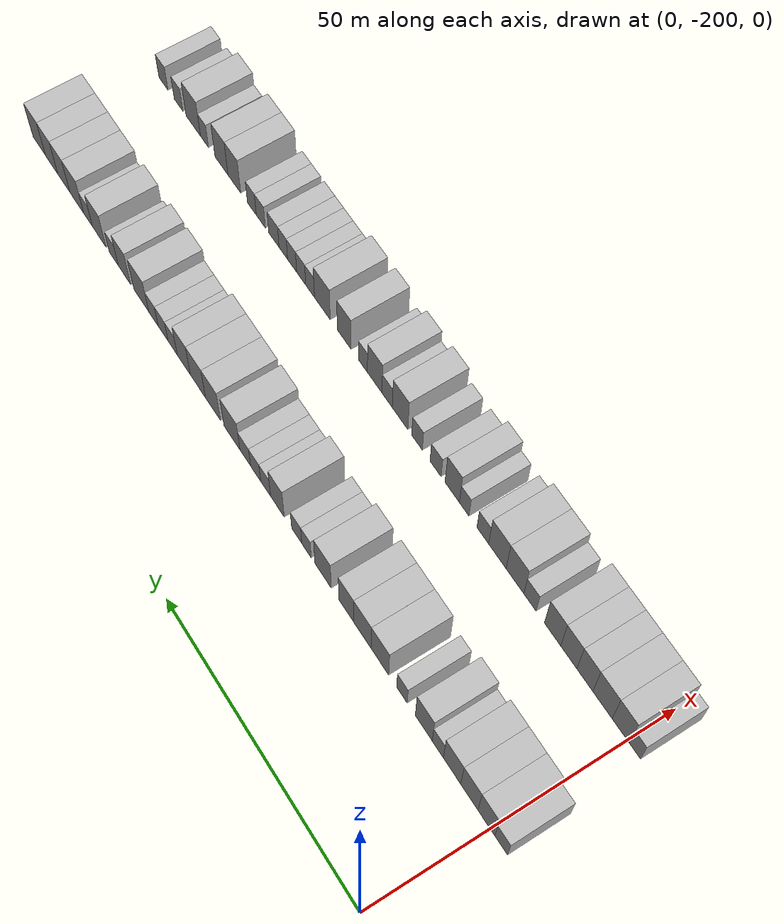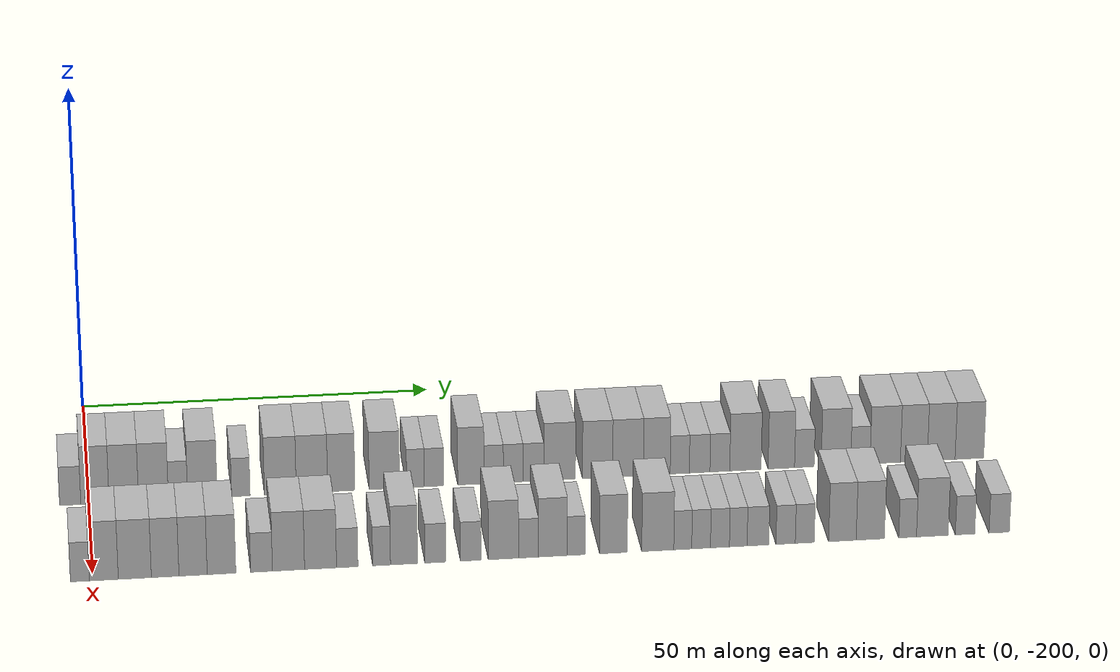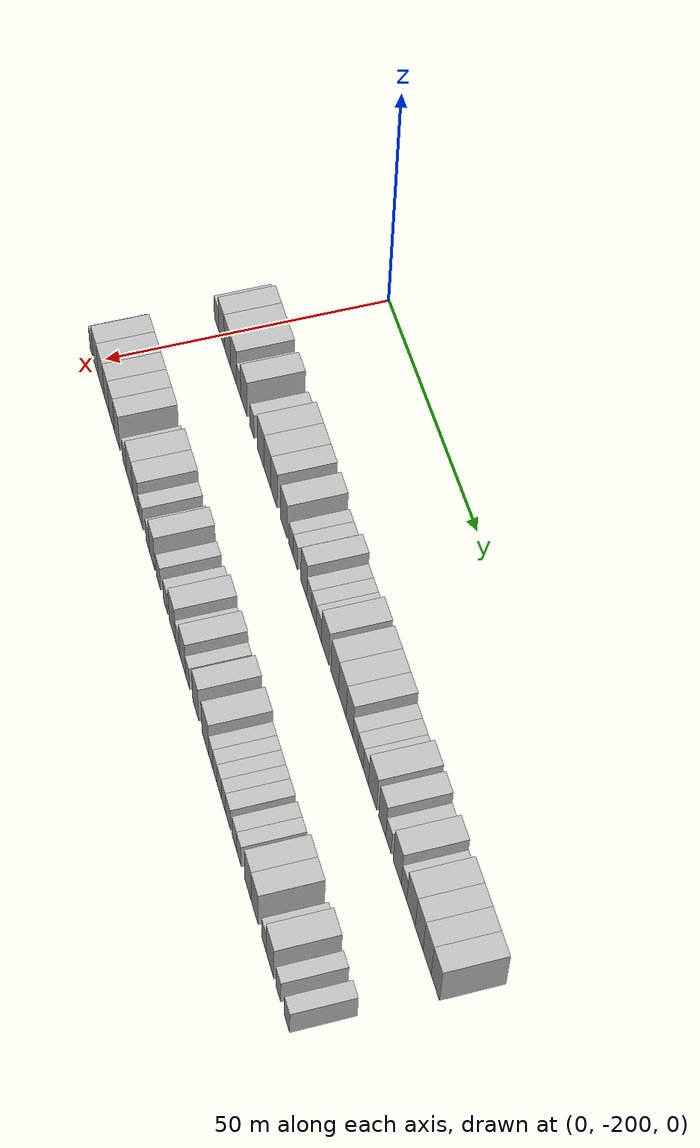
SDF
<sdf version="1.6">
 <world name="default">
  <model name="building_1">
   <static>1</static>
   <pose>25.0000 -202.5261 0 0.000000 0.000000 0.000000</pose>
   <link name="link">
    <pose>0 0 3.00 0 0 0</pose>
    <collision name="collision"><geometry><box><size>10.0000 2.9478 6.0000</size></box></geometry></collision>
    <visual name="visual">
     <cast_shadows>0</cast_shadows>
     <geometry><box><size>10.0000 2.9478 6.0000</size></box></geometry>
     <material>
      <script>
       <uri>model://HANNAS_wall/materials/scripts</uri>
       <uri>model://HANNAS_wall/materials/textures</uri>
       <name>vrc/HANNAS_wall</name>
      </script>
     </material>
    </visual>
   </link>
  </model>
  <model name="building_2">
   <static>1</static>
   <pose>25.0000 -199.0889 0 0.000000 0.000000 0.000000</pose>
   <link name="link">
    <pose>0 0 4.50 0 0 0</pose>
    <collision name="collision"><geometry><box><size>10.0000 3.9264 9.0000</size></box></geometry></collision>
    <visual name="visual">
     <cast_shadows>0</cast_shadows>
     <geometry><box><size>10.0000 3.9264 9.0000</size></box></geometry>
     <material>
      <script>
       <uri>model://HANNAS_wall/materials/scripts</uri>
       <uri>model://HANNAS_wall/materials/textures</uri>
       <name>vrc/HANNAS_wall</name>
      </script>
     </material>
    </visual>
   </link>
  </model>
  <model name="building_3">
   <static>1</static>
   <pose>25.0000 -195.0800 0 0.000000 0.000000 0.000000</pose>
   <link name="link">
    <pose>0 0 4.50 0 0 0</pose>
    <collision name="collision"><geometry><box><size>10.0000 4.0915 9.0000</size></box></geometry></collision>
    <visual name="visual">
     <cast_shadows>0</cast_shadows>
     <geometry><box><size>10.0000 4.0915 9.0000</size></box></geometry>
     <material>
      <script>
       <uri>model://HANNAS_wall/materials/scripts</uri>
       <uri>model://HANNAS_wall/materials/textures</uri>
       <name>vrc/HANNAS_wall</name>
      </script>
     </material>
    </visual>
   </link>
  </model>
  <model name="building_4">
   <static>1</static>
   <pose>25.0000 -190.9570 0 0.000000 0.000000 0.000000</pose>
   <link name="link">
    <pose>0 0 4.50 0 0 0</pose>
    <collision name="collision"><geometry><box><size>10.0000 4.1544 9.0000</size></box></geometry></collision>
    <visual name="visual">
     <cast_shadows>0</cast_shadows>
     <geometry><box><size>10.0000 4.1544 9.0000</size></box></geometry>
     <material>
      <script>
       <uri>model://HANNAS_wall/materials/scripts</uri>
       <uri>model://HANNAS_wall/materials/textures</uri>
       <name>vrc/HANNAS_wall</name>
      </script>
     </material>
    </visual>
   </link>
  </model>
  <model name="building_5">
   <static>1</static>
   <pose>25.0000 -187.5378 0 0.000000 0.000000 0.000000</pose>
   <link name="link">
    <pose>0 0 3.00 0 0 0</pose>
    <collision name="collision"><geometry><box><size>10.0000 2.6841 6.0000</size></box></geometry></collision>
    <visual name="visual">
     <cast_shadows>0</cast_shadows>
     <geometry><box><size>10.0000 2.6841 6.0000</size></box></geometry>
     <material>
      <script>
       <uri>model://HANNAS_wall/materials/scripts</uri>
       <uri>model://HANNAS_wall/materials/textures</uri>
       <name>vrc/HANNAS_wall</name>
      </script>
     </material>
    </visual>
   </link>
  </model>
  <model name="building_6">
   <static>1</static>
   <pose>25.0000 -184.1339 0 0.000000 0.000000 0.000000</pose>
   <link name="link">
    <pose>0 0 4.50 0 0 0</pose>
    <collision name="collision"><geometry><box><size>10.0000 4.1236 9.0000</size></box></geometry></collision>
    <visual name="visual">
     <cast_shadows>0</cast_shadows>
     <geometry><box><size>10.0000 4.1236 9.0000</size></box></geometry>
     <material>
      <script>
       <uri>model://HANNAS_wall/materials/scripts</uri>
       <uri>model://HANNAS_wall/materials/textures</uri>
       <name>vrc/HANNAS_wall</name>
      </script>
     </material>
    </visual>
   </link>
  </model>
  <model name="building_7">
   <static>1</static>
   <pose>25.0000 -178.7740 0 0.000000 0.000000 0.000000</pose>
   <link name="link">
    <pose>0 0 3.00 0 0 0</pose>
    <collision name="collision"><geometry><box><size>10.0000 2.5963 6.0000</size></box></geometry></collision>
    <visual name="visual">
     <cast_shadows>0</cast_shadows>
     <geometry><box><size>10.0000 2.5963 6.0000</size></box></geometry>
     <material>
      <script>
       <uri>model://HANNAS_wall/materials/scripts</uri>
       <uri>model://HANNAS_wall/materials/textures</uri>
       <name>vrc/HANNAS_wall</name>
      </script>
     </material>
    </visual>
   </link>
  </model>
  <model name="building_8">
   <static>1</static>
   <pose>25.0000 -173.2522 0 0.000000 0.000000 0.000000</pose>
   <link name="link">
    <pose>0 0 4.50 0 0 0</pose>
    <collision name="collision"><geometry><box><size>10.0000 4.4474 9.0000</size></box></geometry></collision>
    <visual name="visual">
     <cast_shadows>0</cast_shadows>
     <geometry><box><size>10.0000 4.4474 9.0000</size></box></geometry>
     <material>
      <script>
       <uri>model://HANNAS_wall/materials/scripts</uri>
       <uri>model://HANNAS_wall/materials/textures</uri>
       <name>vrc/HANNAS_wall</name>
      </script>
     </material>
    </visual>
   </link>
  </model>
  <model name="building_9">
   <static>1</static>
   <pose>25.0000 -168.8298 0 0.000000 0.000000 0.000000</pose>
   <link name="link">
    <pose>0 0 4.50 0 0 0</pose>
    <collision name="collision"><geometry><box><size>10.0000 4.3973 9.0000</size></box></geometry></collision>
    <visual name="visual">
     <cast_shadows>0</cast_shadows>
     <geometry><box><size>10.0000 4.3973 9.0000</size></box></geometry>
     <material>
      <script>
       <uri>model://HANNAS_wall/materials/scripts</uri>
       <uri>model://HANNAS_wall/materials/textures</uri>
       <name>vrc/HANNAS_wall</name>
      </script>
     </material>
    </visual>
   </link>
  </model>
  <model name="building_10">
   <static>1</static>
   <pose>25.0000 -164.7153 0 0.000000 0.000000 0.000000</pose>
   <link name="link">
    <pose>0 0 4.50 0 0 0</pose>
    <collision name="collision"><geometry><box><size>10.0000 3.8318 9.0000</size></box></geometry></collision>
    <visual name="visual">
     <cast_shadows>0</cast_shadows>
     <geometry><box><size>10.0000 3.8318 9.0000</size></box></geometry>
     <material>
      <script>
       <uri>model://HANNAS_wall/materials/scripts</uri>
       <uri>model://HANNAS_wall/materials/textures</uri>
       <name>vrc/HANNAS_wall</name>
      </script>
     </material>
    </visual>
   </link>
  </model>
  <model name="building_11">
   <static>1</static>
   <pose>25.0000 -158.6673 0 0.000000 0.000000 0.000000</pose>
   <link name="link">
    <pose>0 0 4.50 0 0 0</pose>
    <collision name="collision"><geometry><box><size>10.0000 4.2642 9.0000</size></box></geometry></collision>
    <visual name="visual">
     <cast_shadows>0</cast_shadows>
     <geometry><box><size>10.0000 4.2642 9.0000</size></box></geometry>
     <material>
      <script>
       <uri>model://HANNAS_wall/materials/scripts</uri>
       <uri>model://HANNAS_wall/materials/textures</uri>
       <name>vrc/HANNAS_wall</name>
      </script>
     </material>
    </visual>
   </link>
  </model>
  <model name="building_12">
   <static>1</static>
   <pose>25.0000 -154.2892 0 0.000000 0.000000 0.000000</pose>
   <link name="link">
    <pose>0 0 3.00 0 0 0</pose>
    <collision name="collision"><geometry><box><size>10.0000 2.4920 6.0000</size></box></geometry></collision>
    <visual name="visual">
     <cast_shadows>0</cast_shadows>
     <geometry><box><size>10.0000 2.4920 6.0000</size></box></geometry>
     <material>
      <script>
       <uri>model://HANNAS_wall/materials/scripts</uri>
       <uri>model://HANNAS_wall/materials/textures</uri>
       <name>vrc/HANNAS_wall</name>
      </script>
     </material>
    </visual>
   </link>
  </model>
  <model name="building_13">
   <static>1</static>
   <pose>25.0000 -151.6903 0 0.000000 0.000000 0.000000</pose>
   <link name="link">
    <pose>0 0 3.00 0 0 0</pose>
    <collision name="collision"><geometry><box><size>10.0000 2.7059 6.0000</size></box></geometry></collision>
    <visual name="visual">
     <cast_shadows>0</cast_shadows>
     <geometry><box><size>10.0000 2.7059 6.0000</size></box></geometry>
     <material>
      <script>
       <uri>model://HANNAS_wall/materials/scripts</uri>
       <uri>model://HANNAS_wall/materials/textures</uri>
       <name>vrc/HANNAS_wall</name>
      </script>
     </material>
    </visual>
   </link>
  </model>
  <model name="building_14">
   <static>1</static>
   <pose>25.0000 -146.4922 0 0.000000 0.000000 0.000000</pose>
   <link name="link">
    <pose>0 0 4.50 0 0 0</pose>
    <collision name="collision"><geometry><box><size>10.0000 3.6902 9.0000</size></box></geometry></collision>
    <visual name="visual">
     <cast_shadows>0</cast_shadows>
     <geometry><box><size>10.0000 3.6902 9.0000</size></box></geometry>
     <material>
      <script>
       <uri>model://HANNAS_wall/materials/scripts</uri>
       <uri>model://HANNAS_wall/materials/textures</uri>
       <name>vrc/HANNAS_wall</name>
      </script>
     </material>
    </visual>
   </link>
  </model>
  <model name="building_15">
   <static>1</static>
   <pose>25.0000 -143.2801 0 0.000000 0.000000 0.000000</pose>
   <link name="link">
    <pose>0 0 3.00 0 0 0</pose>
    <collision name="collision"><geometry><box><size>10.0000 2.7340 6.0000</size></box></geometry></collision>
    <visual name="visual">
     <cast_shadows>0</cast_shadows>
     <geometry><box><size>10.0000 2.7340 6.0000</size></box></geometry>
     <material>
      <script>
       <uri>model://HANNAS_wall/materials/scripts</uri>
       <uri>model://HANNAS_wall/materials/textures</uri>
       <name>vrc/HANNAS_wall</name>
      </script>
     </material>
    </visual>
   </link>
  </model>
  <model name="building_16">
   <static>1</static>
   <pose>25.0000 -140.5237 0 0.000000 0.000000 0.000000</pose>
   <link name="link">
    <pose>0 0 3.00 0 0 0</pose>
    <collision name="collision"><geometry><box><size>10.0000 2.7788 6.0000</size></box></geometry></collision>
    <visual name="visual">
     <cast_shadows>0</cast_shadows>
     <geometry><box><size>10.0000 2.7788 6.0000</size></box></geometry>
     <material>
      <script>
       <uri>model://HANNAS_wall/materials/scripts</uri>
       <uri>model://HANNAS_wall/materials/textures</uri>
       <name>vrc/HANNAS_wall</name>
      </script>
     </material>
    </visual>
   </link>
  </model>
  <model name="building_17">
   <static>1</static>
   <pose>25.0000 -137.6611 0 0.000000 0.000000 0.000000</pose>
   <link name="link">
    <pose>0 0 3.00 0 0 0</pose>
    <collision name="collision"><geometry><box><size>10.0000 2.9464 6.0000</size></box></geometry></collision>
    <visual name="visual">
     <cast_shadows>0</cast_shadows>
     <geometry><box><size>10.0000 2.9464 6.0000</size></box></geometry>
     <material>
      <script>
       <uri>model://HANNAS_wall/materials/scripts</uri>
       <uri>model://HANNAS_wall/materials/textures</uri>
       <name>vrc/HANNAS_wall</name>
      </script>
     </material>
    </visual>
   </link>
  </model>
  <model name="building_18">
   <static>1</static>
   <pose>25.0000 -133.9481 0 0.000000 0.000000 0.000000</pose>
   <link name="link">
    <pose>0 0 4.50 0 0 0</pose>
    <collision name="collision"><geometry><box><size>10.0000 4.4797 9.0000</size></box></geometry></collision>
    <visual name="visual">
     <cast_shadows>0</cast_shadows>
     <geometry><box><size>10.0000 4.4797 9.0000</size></box></geometry>
     <material>
      <script>
       <uri>model://HANNAS_wall/materials/scripts</uri>
       <uri>model://HANNAS_wall/materials/textures</uri>
       <name>vrc/HANNAS_wall</name>
      </script>
     </material>
    </visual>
   </link>
  </model>
  <model name="building_19">
   <static>1</static>
   <pose>25.0000 -128.5693 0 0.000000 0.000000 0.000000</pose>
   <link name="link">
    <pose>0 0 4.50 0 0 0</pose>
    <collision name="collision"><geometry><box><size>10.0000 4.2778 9.0000</size></box></geometry></collision>
    <visual name="visual">
     <cast_shadows>0</cast_shadows>
     <geometry><box><size>10.0000 4.2778 9.0000</size></box></geometry>
     <material>
      <script>
       <uri>model://HANNAS_wall/materials/scripts</uri>
       <uri>model://HANNAS_wall/materials/textures</uri>
       <name>vrc/HANNAS_wall</name>
      </script>
     </material>
    </visual>
   </link>
  </model>
  <model name="building_20">
   <static>1</static>
   <pose>25.0000 -124.2486 0 0.000000 0.000000 0.000000</pose>
   <link name="link">
    <pose>0 0 4.50 0 0 0</pose>
    <collision name="collision"><geometry><box><size>10.0000 4.3637 9.0000</size></box></geometry></collision>
    <visual name="visual">
     <cast_shadows>0</cast_shadows>
     <geometry><box><size>10.0000 4.3637 9.0000</size></box></geometry>
     <material>
      <script>
       <uri>model://HANNAS_wall/materials/scripts</uri>
       <uri>model://HANNAS_wall/materials/textures</uri>
       <name>vrc/HANNAS_wall</name>
      </script>
     </material>
    </visual>
   </link>
  </model>
  <model name="building_21">
   <static>1</static>
   <pose>25.0000 -120.1668 0 0.000000 0.000000 0.000000</pose>
   <link name="link">
    <pose>0 0 4.50 0 0 0</pose>
    <collision name="collision"><geometry><box><size>10.0000 3.8000 9.0000</size></box></geometry></collision>
    <visual name="visual">
     <cast_shadows>0</cast_shadows>
     <geometry><box><size>10.0000 3.8000 9.0000</size></box></geometry>
     <material>
      <script>
       <uri>model://HANNAS_wall/materials/scripts</uri>
       <uri>model://HANNAS_wall/materials/textures</uri>
       <name>vrc/HANNAS_wall</name>
      </script>
     </material>
    </visual>
   </link>
  </model>
  <model name="building_22">
   <static>1</static>
   <pose>25.0000 -116.9023 0 0.000000 0.000000 0.000000</pose>
   <link name="link">
    <pose>0 0 3.00 0 0 0</pose>
    <collision name="collision"><geometry><box><size>10.0000 2.7288 6.0000</size></box></geometry></collision>
    <visual name="visual">
     <cast_shadows>0</cast_shadows>
     <geometry><box><size>10.0000 2.7288 6.0000</size></box></geometry>
     <material>
      <script>
       <uri>model://HANNAS_wall/materials/scripts</uri>
       <uri>model://HANNAS_wall/materials/textures</uri>
       <name>vrc/HANNAS_wall</name>
      </script>
     </material>
    </visual>
   </link>
  </model>
  <model name="building_23">
   <static>1</static>
   <pose>25.0000 -114.0692 0 0.000000 0.000000 0.000000</pose>
   <link name="link">
    <pose>0 0 3.00 0 0 0</pose>
    <collision name="collision"><geometry><box><size>10.0000 2.9374 6.0000</size></box></geometry></collision>
    <visual name="visual">
     <cast_shadows>0</cast_shadows>
     <geometry><box><size>10.0000 2.9374 6.0000</size></box></geometry>
     <material>
      <script>
       <uri>model://HANNAS_wall/materials/scripts</uri>
       <uri>model://HANNAS_wall/materials/textures</uri>
       <name>vrc/HANNAS_wall</name>
      </script>
     </material>
    </visual>
   </link>
  </model>
  <model name="building_24">
   <static>1</static>
   <pose>25.0000 -111.1918 0 0.000000 0.000000 0.000000</pose>
   <link name="link">
    <pose>0 0 3.00 0 0 0</pose>
    <collision name="collision"><geometry><box><size>10.0000 2.8174 6.0000</size></box></geometry></collision>
    <visual name="visual">
     <cast_shadows>0</cast_shadows>
     <geometry><box><size>10.0000 2.8174 6.0000</size></box></geometry>
     <material>
      <script>
       <uri>model://HANNAS_wall/materials/scripts</uri>
       <uri>model://HANNAS_wall/materials/textures</uri>
       <name>vrc/HANNAS_wall</name>
      </script>
     </material>
    </visual>
   </link>
  </model>
  <model name="building_25">
   <static>1</static>
   <pose>25.0000 -107.5457 0 0.000000 0.000000 0.000000</pose>
   <link name="link">
    <pose>0 0 4.50 0 0 0</pose>
    <collision name="collision"><geometry><box><size>10.0000 4.4749 9.0000</size></box></geometry></collision>
    <visual name="visual">
     <cast_shadows>0</cast_shadows>
     <geometry><box><size>10.0000 4.4749 9.0000</size></box></geometry>
     <material>
      <script>
       <uri>model://HANNAS_wall/materials/scripts</uri>
       <uri>model://HANNAS_wall/materials/textures</uri>
       <name>vrc/HANNAS_wall</name>
      </script>
     </material>
    </visual>
   </link>
  </model>
  <model name="building_26">
   <static>1</static>
   <pose>25.0000 -102.4200 0 0.000000 0.000000 0.000000</pose>
   <link name="link">
    <pose>0 0 4.50 0 0 0</pose>
    <collision name="collision"><geometry><box><size>10.0000 3.7764 9.0000</size></box></geometry></collision>
    <visual name="visual">
     <cast_shadows>0</cast_shadows>
     <geometry><box><size>10.0000 3.7764 9.0000</size></box></geometry>
     <material>
      <script>
       <uri>model://HANNAS_wall/materials/scripts</uri>
       <uri>model://HANNAS_wall/materials/textures</uri>
       <name>vrc/HANNAS_wall</name>
      </script>
     </material>
    </visual>
   </link>
  </model>
  <model name="building_27">
   <static>1</static>
   <pose>25.0000 -99.1316 0 0.000000 0.000000 0.000000</pose>
   <link name="link">
    <pose>0 0 3.00 0 0 0</pose>
    <collision name="collision"><geometry><box><size>10.0000 2.8005 6.0000</size></box></geometry></collision>
    <visual name="visual">
     <cast_shadows>0</cast_shadows>
     <geometry><box><size>10.0000 2.8005 6.0000</size></box></geometry>
     <material>
      <script>
       <uri>model://HANNAS_wall/materials/scripts</uri>
       <uri>model://HANNAS_wall/materials/textures</uri>
       <name>vrc/HANNAS_wall</name>
      </script>
     </material>
    </visual>
   </link>
  </model>
  <model name="building_28">
   <static>1</static>
   <pose>25.0000 -94.6144 0 0.000000 0.000000 0.000000</pose>
   <link name="link">
    <pose>0 0 4.50 0 0 0</pose>
    <collision name="collision"><geometry><box><size>10.0000 4.2339 9.0000</size></box></geometry></collision>
    <visual name="visual">
     <cast_shadows>0</cast_shadows>
     <geometry><box><size>10.0000 4.2339 9.0000</size></box></geometry>
     <material>
      <script>
       <uri>model://HANNAS_wall/materials/scripts</uri>
       <uri>model://HANNAS_wall/materials/textures</uri>
       <name>vrc/HANNAS_wall</name>
      </script>
     </material>
    </visual>
   </link>
  </model>
  <model name="building_29">
   <static>1</static>
   <pose>25.0000 -91.1140 0 0.000000 0.000000 0.000000</pose>
   <link name="link">
    <pose>0 0 3.00 0 0 0</pose>
    <collision name="collision"><geometry><box><size>10.0000 2.7668 6.0000</size></box></geometry></collision>
    <visual name="visual">
     <cast_shadows>0</cast_shadows>
     <geometry><box><size>10.0000 2.7668 6.0000</size></box></geometry>
     <material>
      <script>
       <uri>model://HANNAS_wall/materials/scripts</uri>
       <uri>model://HANNAS_wall/materials/textures</uri>
       <name>vrc/HANNAS_wall</name>
      </script>
     </material>
    </visual>
   </link>
  </model>
  <model name="building_30">
   <static>1</static>
   <pose>25.0000 -87.5491 0 0.000000 0.000000 0.000000</pose>
   <link name="link">
    <pose>0 0 4.50 0 0 0</pose>
    <collision name="collision"><geometry><box><size>10.0000 4.3629 9.0000</size></box></geometry></collision>
    <visual name="visual">
     <cast_shadows>0</cast_shadows>
     <geometry><box><size>10.0000 4.3629 9.0000</size></box></geometry>
     <material>
      <script>
       <uri>model://HANNAS_wall/materials/scripts</uri>
       <uri>model://HANNAS_wall/materials/textures</uri>
       <name>vrc/HANNAS_wall</name>
      </script>
     </material>
    </visual>
   </link>
  </model>
  <model name="building_31">
   <static>1</static>
   <pose>25.0000 -83.4350 0 0.000000 0.000000 0.000000</pose>
   <link name="link">
    <pose>0 0 4.50 0 0 0</pose>
    <collision name="collision"><geometry><box><size>10.0000 3.8654 9.0000</size></box></geometry></collision>
    <visual name="visual">
     <cast_shadows>0</cast_shadows>
     <geometry><box><size>10.0000 3.8654 9.0000</size></box></geometry>
     <material>
      <script>
       <uri>model://HANNAS_wall/materials/scripts</uri>
       <uri>model://HANNAS_wall/materials/textures</uri>
       <name>vrc/HANNAS_wall</name>
      </script>
     </material>
    </visual>
   </link>
  </model>
  <model name="building_32">
   <static>1</static>
   <pose>25.0000 -79.5037 0 0.000000 0.000000 0.000000</pose>
   <link name="link">
    <pose>0 0 4.50 0 0 0</pose>
    <collision name="collision"><geometry><box><size>10.0000 3.9973 9.0000</size></box></geometry></collision>
    <visual name="visual">
     <cast_shadows>0</cast_shadows>
     <geometry><box><size>10.0000 3.9973 9.0000</size></box></geometry>
     <material>
      <script>
       <uri>model://HANNAS_wall/materials/scripts</uri>
       <uri>model://HANNAS_wall/materials/textures</uri>
       <name>vrc/HANNAS_wall</name>
      </script>
     </material>
    </visual>
   </link>
  </model>
  <model name="building_33">
   <static>1</static>
   <pose>25.0000 -75.4474 0 0.000000 0.000000 0.000000</pose>
   <link name="link">
    <pose>0 0 4.50 0 0 0</pose>
    <collision name="collision"><geometry><box><size>10.0000 4.1154 9.0000</size></box></geometry></collision>
    <visual name="visual">
     <cast_shadows>0</cast_shadows>
     <geometry><box><size>10.0000 4.1154 9.0000</size></box></geometry>
     <material>
      <script>
       <uri>model://HANNAS_wall/materials/scripts</uri>
       <uri>model://HANNAS_wall/materials/textures</uri>
       <name>vrc/HANNAS_wall</name>
      </script>
     </material>
    </visual>
   </link>
  </model>
  <model name="building_94">
   <static>1</static>
   <pose>47.0000 -201.7271 0 0.000000 0.000000 0.000000</pose>
   <link name="link">
    <pose>0 0 3.00 0 0 0</pose>
    <collision name="collision"><geometry><box><size>10.0000 2.5458 6.0000</size></box></geometry></collision>
    <visual name="visual">
     <cast_shadows>0</cast_shadows>
     <geometry><box><size>10.0000 2.5458 6.0000</size></box></geometry>
     <material>
      <script>
       <uri>model://HANNAS_wall/materials/scripts</uri>
       <uri>model://HANNAS_wall/materials/textures</uri>
       <name>vrc/HANNAS_wall</name>
      </script>
     </material>
    </visual>
   </link>
  </model>
  <model name="building_95">
   <static>1</static>
   <pose>47.0000 -198.5022 0 0.000000 0.000000 0.000000</pose>
   <link name="link">
    <pose>0 0 4.50 0 0 0</pose>
    <collision name="collision"><geometry><box><size>10.0000 3.9041 9.0000</size></box></geometry></collision>
    <visual name="visual">
     <cast_shadows>0</cast_shadows>
     <geometry><box><size>10.0000 3.9041 9.0000</size></box></geometry>
     <material>
      <script>
       <uri>model://HANNAS_wall/materials/scripts</uri>
       <uri>model://HANNAS_wall/materials/textures</uri>
       <name>vrc/HANNAS_wall</name>
      </script>
     </material>
    </visual>
   </link>
  </model>
  <model name="building_96">
   <static>1</static>
   <pose>47.0000 -194.3204 0 0.000000 0.000000 0.000000</pose>
   <link name="link">
    <pose>0 0 4.50 0 0 0</pose>
    <collision name="collision"><geometry><box><size>10.0000 4.4596 9.0000</size></box></geometry></collision>
    <visual name="visual">
     <cast_shadows>0</cast_shadows>
     <geometry><box><size>10.0000 4.4596 9.0000</size></box></geometry>
     <material>
      <script>
       <uri>model://HANNAS_wall/materials/scripts</uri>
       <uri>model://HANNAS_wall/materials/textures</uri>
       <name>vrc/HANNAS_wall</name>
      </script>
     </material>
    </visual>
   </link>
  </model>
  <model name="building_97">
   <static>1</static>
   <pose>47.0000 -190.2249 0 0.000000 0.000000 0.000000</pose>
   <link name="link">
    <pose>0 0 4.50 0 0 0</pose>
    <collision name="collision"><geometry><box><size>10.0000 3.7313 9.0000</size></box></geometry></collision>
    <visual name="visual">
     <cast_shadows>0</cast_shadows>
     <geometry><box><size>10.0000 3.7313 9.0000</size></box></geometry>
     <material>
      <script>
       <uri>model://HANNAS_wall/materials/scripts</uri>
       <uri>model://HANNAS_wall/materials/textures</uri>
       <name>vrc/HANNAS_wall</name>
      </script>
     </material>
    </visual>
   </link>
  </model>
  <model name="building_98">
   <static>1</static>
   <pose>47.0000 -186.4495 0 0.000000 0.000000 0.000000</pose>
   <link name="link">
    <pose>0 0 4.50 0 0 0</pose>
    <collision name="collision"><geometry><box><size>10.0000 3.8194 9.0000</size></box></geometry></collision>
    <visual name="visual">
     <cast_shadows>0</cast_shadows>
     <geometry><box><size>10.0000 3.8194 9.0000</size></box></geometry>
     <material>
      <script>
       <uri>model://HANNAS_wall/materials/scripts</uri>
       <uri>model://HANNAS_wall/materials/textures</uri>
       <name>vrc/HANNAS_wall</name>
      </script>
     </material>
    </visual>
   </link>
  </model>
  <model name="building_99">
   <static>1</static>
   <pose>47.0000 -182.5993 0 0.000000 0.000000 0.000000</pose>
   <link name="link">
    <pose>0 0 4.50 0 0 0</pose>
    <collision name="collision"><geometry><box><size>10.0000 3.8811 9.0000</size></box></geometry></collision>
    <visual name="visual">
     <cast_shadows>0</cast_shadows>
     <geometry><box><size>10.0000 3.8811 9.0000</size></box></geometry>
     <material>
      <script>
       <uri>model://HANNAS_wall/materials/scripts</uri>
       <uri>model://HANNAS_wall/materials/textures</uri>
       <name>vrc/HANNAS_wall</name>
      </script>
     </material>
    </visual>
   </link>
  </model>
  <model name="building_100">
   <static>1</static>
   <pose>47.0000 -177.1809 0 0.000000 0.000000 0.000000</pose>
   <link name="link">
    <pose>0 0 3.00 0 0 0</pose>
    <collision name="collision"><geometry><box><size>10.0000 2.9557 6.0000</size></box></geometry></collision>
    <visual name="visual">
     <cast_shadows>0</cast_shadows>
     <geometry><box><size>10.0000 2.9557 6.0000</size></box></geometry>
     <material>
      <script>
       <uri>model://HANNAS_wall/materials/scripts</uri>
       <uri>model://HANNAS_wall/materials/textures</uri>
       <name>vrc/HANNAS_wall</name>
      </script>
     </material>
    </visual>
   </link>
  </model>
  <model name="building_101">
   <static>1</static>
   <pose>47.0000 -173.5213 0 0.000000 0.000000 0.000000</pose>
   <link name="link">
    <pose>0 0 4.50 0 0 0</pose>
    <collision name="collision"><geometry><box><size>10.0000 4.3636 9.0000</size></box></geometry></collision>
    <visual name="visual">
     <cast_shadows>0</cast_shadows>
     <geometry><box><size>10.0000 4.3636 9.0000</size></box></geometry>
     <material>
      <script>
       <uri>model://HANNAS_wall/materials/scripts</uri>
       <uri>model://HANNAS_wall/materials/textures</uri>
       <name>vrc/HANNAS_wall</name>
      </script>
     </material>
    </visual>
   </link>
  </model>
  <model name="building_102">
   <static>1</static>
   <pose>47.0000 -169.1672 0 0.000000 0.000000 0.000000</pose>
   <link name="link">
    <pose>0 0 4.50 0 0 0</pose>
    <collision name="collision"><geometry><box><size>10.0000 4.3445 9.0000</size></box></geometry></collision>
    <visual name="visual">
     <cast_shadows>0</cast_shadows>
     <geometry><box><size>10.0000 4.3445 9.0000</size></box></geometry>
     <material>
      <script>
       <uri>model://HANNAS_wall/materials/scripts</uri>
       <uri>model://HANNAS_wall/materials/textures</uri>
       <name>vrc/HANNAS_wall</name>
      </script>
     </material>
    </visual>
   </link>
  </model>
  <model name="building_103">
   <static>1</static>
   <pose>47.0000 -165.5342 0 0.000000 0.000000 0.000000</pose>
   <link name="link">
    <pose>0 0 3.00 0 0 0</pose>
    <collision name="collision"><geometry><box><size>10.0000 2.9216 6.0000</size></box></geometry></collision>
    <visual name="visual">
     <cast_shadows>0</cast_shadows>
     <geometry><box><size>10.0000 2.9216 6.0000</size></box></geometry>
     <material>
      <script>
       <uri>model://HANNAS_wall/materials/scripts</uri>
       <uri>model://HANNAS_wall/materials/textures</uri>
       <name>vrc/HANNAS_wall</name>
      </script>
     </material>
    </visual>
   </link>
  </model>
  <model name="building_104">
   <static>1</static>
   <pose>47.0000 -160.8596 0 0.000000 0.000000 0.000000</pose>
   <link name="link">
    <pose>0 0 3.00 0 0 0</pose>
    <collision name="collision"><geometry><box><size>10.0000 2.4276 6.0000</size></box></geometry></collision>
    <visual name="visual">
     <cast_shadows>0</cast_shadows>
     <geometry><box><size>10.0000 2.4276 6.0000</size></box></geometry>
     <material>
      <script>
       <uri>model://HANNAS_wall/materials/scripts</uri>
       <uri>model://HANNAS_wall/materials/textures</uri>
       <name>vrc/HANNAS_wall</name>
      </script>
     </material>
    </visual>
   </link>
  </model>
  <model name="building_105">
   <static>1</static>
   <pose>47.0000 -157.8012 0 0.000000 0.000000 0.000000</pose>
   <link name="link">
    <pose>0 0 4.50 0 0 0</pose>
    <collision name="collision"><geometry><box><size>10.0000 3.6892 9.0000</size></box></geometry></collision>
    <visual name="visual">
     <cast_shadows>0</cast_shadows>
     <geometry><box><size>10.0000 3.6892 9.0000</size></box></geometry>
     <material>
      <script>
       <uri>model://HANNAS_wall/materials/scripts</uri>
       <uri>model://HANNAS_wall/materials/textures</uri>
       <name>vrc/HANNAS_wall</name>
      </script>
     </material>
    </visual>
   </link>
  </model>
  <model name="building_106">
   <static>1</static>
   <pose>47.0000 -153.5254 0 0.000000 0.000000 0.000000</pose>
   <link name="link">
    <pose>0 0 3.00 0 0 0</pose>
    <collision name="collision"><geometry><box><size>10.0000 2.8625 6.0000</size></box></geometry></collision>
    <visual name="visual">
     <cast_shadows>0</cast_shadows>
     <geometry><box><size>10.0000 2.8625 6.0000</size></box></geometry>
     <material>
      <script>
       <uri>model://HANNAS_wall/materials/scripts</uri>
       <uri>model://HANNAS_wall/materials/textures</uri>
       <name>vrc/HANNAS_wall</name>
      </script>
     </material>
    </visual>
   </link>
  </model>
  <model name="building_107">
   <static>1</static>
   <pose>47.0000 -148.6903 0 0.000000 0.000000 0.000000</pose>
   <link name="link">
    <pose>0 0 3.00 0 0 0</pose>
    <collision name="collision"><geometry><box><size>10.0000 2.8077 6.0000</size></box></geometry></collision>
    <visual name="visual">
     <cast_shadows>0</cast_shadows>
     <geometry><box><size>10.0000 2.8077 6.0000</size></box></geometry>
     <material>
      <script>
       <uri>model://HANNAS_wall/materials/scripts</uri>
       <uri>model://HANNAS_wall/materials/textures</uri>
       <name>vrc/HANNAS_wall</name>
      </script>
     </material>
    </visual>
   </link>
  </model>
  <model name="building_108">
   <static>1</static>
   <pose>47.0000 -144.2172 0 0.000000 0.000000 0.000000</pose>
   <link name="link">
    <pose>0 0 4.50 0 0 0</pose>
    <collision name="collision"><geometry><box><size>10.0000 4.1384 9.0000</size></box></geometry></collision>
    <visual name="visual">
     <cast_shadows>0</cast_shadows>
     <geometry><box><size>10.0000 4.1384 9.0000</size></box></geometry>
     <material>
      <script>
       <uri>model://HANNAS_wall/materials/scripts</uri>
       <uri>model://HANNAS_wall/materials/textures</uri>
       <name>vrc/HANNAS_wall</name>
      </script>
     </material>
    </visual>
   </link>
  </model>
  <model name="building_109">
   <static>1</static>
   <pose>47.0000 -140.7679 0 0.000000 0.000000 0.000000</pose>
   <link name="link">
    <pose>0 0 3.00 0 0 0</pose>
    <collision name="collision"><geometry><box><size>10.0000 2.7602 6.0000</size></box></geometry></collision>
    <visual name="visual">
     <cast_shadows>0</cast_shadows>
     <geometry><box><size>10.0000 2.7602 6.0000</size></box></geometry>
     <material>
      <script>
       <uri>model://HANNAS_wall/materials/scripts</uri>
       <uri>model://HANNAS_wall/materials/textures</uri>
       <name>vrc/HANNAS_wall</name>
      </script>
     </material>
    </visual>
   </link>
  </model>
  <model name="building_110">
   <static>1</static>
   <pose>47.0000 -137.4171 0 0.000000 0.000000 0.000000</pose>
   <link name="link">
    <pose>0 0 4.50 0 0 0</pose>
    <collision name="collision"><geometry><box><size>10.0000 3.9414 9.0000</size></box></geometry></collision>
    <visual name="visual">
     <cast_shadows>0</cast_shadows>
     <geometry><box><size>10.0000 3.9414 9.0000</size></box></geometry>
     <material>
      <script>
       <uri>model://HANNAS_wall/materials/scripts</uri>
       <uri>model://HANNAS_wall/materials/textures</uri>
       <name>vrc/HANNAS_wall</name>
      </script>
     </material>
    </visual>
   </link>
  </model>
  <model name="building_111">
   <static>1</static>
   <pose>47.0000 -134.2270 0 0.000000 0.000000 0.000000</pose>
   <link name="link">
    <pose>0 0 3.00 0 0 0</pose>
    <collision name="collision"><geometry><box><size>10.0000 2.4389 6.0000</size></box></geometry></collision>
    <visual name="visual">
     <cast_shadows>0</cast_shadows>
     <geometry><box><size>10.0000 2.4389 6.0000</size></box></geometry>
     <material>
      <script>
       <uri>model://HANNAS_wall/materials/scripts</uri>
       <uri>model://HANNAS_wall/materials/textures</uri>
       <name>vrc/HANNAS_wall</name>
      </script>
     </material>
    </visual>
   </link>
  </model>
  <model name="building_112">
   <static>1</static>
   <pose>47.0000 -129.1027 0 0.000000 0.000000 0.000000</pose>
   <link name="link">
    <pose>0 0 4.50 0 0 0</pose>
    <collision name="collision"><geometry><box><size>10.0000 3.8096 9.0000</size></box></geometry></collision>
    <visual name="visual">
     <cast_shadows>0</cast_shadows>
     <geometry><box><size>10.0000 3.8096 9.0000</size></box></geometry>
     <material>
      <script>
       <uri>model://HANNAS_wall/materials/scripts</uri>
       <uri>model://HANNAS_wall/materials/textures</uri>
       <name>vrc/HANNAS_wall</name>
      </script>
     </material>
    </visual>
   </link>
  </model>
  <model name="building_113">
   <static>1</static>
   <pose>47.0000 -122.9899 0 0.000000 0.000000 0.000000</pose>
   <link name="link">
    <pose>0 0 4.50 0 0 0</pose>
    <collision name="collision"><geometry><box><size>10.0000 4.4161 9.0000</size></box></geometry></collision>
    <visual name="visual">
     <cast_shadows>0</cast_shadows>
     <geometry><box><size>10.0000 4.4161 9.0000</size></box></geometry>
     <material>
      <script>
       <uri>model://HANNAS_wall/materials/scripts</uri>
       <uri>model://HANNAS_wall/materials/textures</uri>
       <name>vrc/HANNAS_wall</name>
      </script>
     </material>
    </visual>
   </link>
  </model>
  <model name="building_114">
   <static>1</static>
   <pose>47.0000 -119.5440 0 0.000000 0.000000 0.000000</pose>
   <link name="link">
    <pose>0 0 3.00 0 0 0</pose>
    <collision name="collision"><geometry><box><size>10.0000 2.4758 6.0000</size></box></geometry></collision>
    <visual name="visual">
     <cast_shadows>0</cast_shadows>
     <geometry><box><size>10.0000 2.4758 6.0000</size></box></geometry>
     <material>
      <script>
       <uri>model://HANNAS_wall/materials/scripts</uri>
       <uri>model://HANNAS_wall/materials/textures</uri>
       <name>vrc/HANNAS_wall</name>
      </script>
     </material>
    </visual>
   </link>
  </model>
  <model name="building_115">
   <static>1</static>
   <pose>47.0000 -117.0106 0 0.000000 0.000000 0.000000</pose>
   <link name="link">
    <pose>0 0 3.00 0 0 0</pose>
    <collision name="collision"><geometry><box><size>10.0000 2.5910 6.0000</size></box></geometry></collision>
    <visual name="visual">
     <cast_shadows>0</cast_shadows>
     <geometry><box><size>10.0000 2.5910 6.0000</size></box></geometry>
     <material>
      <script>
       <uri>model://HANNAS_wall/materials/scripts</uri>
       <uri>model://HANNAS_wall/materials/textures</uri>
       <name>vrc/HANNAS_wall</name>
      </script>
     </material>
    </visual>
   </link>
  </model>
  <model name="building_116">
   <static>1</static>
   <pose>47.0000 -114.4055 0 0.000000 0.000000 0.000000</pose>
   <link name="link">
    <pose>0 0 3.00 0 0 0</pose>
    <collision name="collision"><geometry><box><size>10.0000 2.6192 6.0000</size></box></geometry></collision>
    <visual name="visual">
     <cast_shadows>0</cast_shadows>
     <geometry><box><size>10.0000 2.6192 6.0000</size></box></geometry>
     <material>
      <script>
       <uri>model://HANNAS_wall/materials/scripts</uri>
       <uri>model://HANNAS_wall/materials/textures</uri>
       <name>vrc/HANNAS_wall</name>
      </script>
     </material>
    </visual>
   </link>
  </model>
  <model name="building_117">
   <static>1</static>
   <pose>47.0000 -111.8732 0 0.000000 0.000000 0.000000</pose>
   <link name="link">
    <pose>0 0 3.00 0 0 0</pose>
    <collision name="collision"><geometry><box><size>10.0000 2.4455 6.0000</size></box></geometry></collision>
    <visual name="visual">
     <cast_shadows>0</cast_shadows>
     <geometry><box><size>10.0000 2.4455 6.0000</size></box></geometry>
     <material>
      <script>
       <uri>model://HANNAS_wall/materials/scripts</uri>
       <uri>model://HANNAS_wall/materials/textures</uri>
       <name>vrc/HANNAS_wall</name>
      </script>
     </material>
    </visual>
   </link>
  </model>
  <model name="building_118">
   <static>1</static>
   <pose>47.0000 -109.1508 0 0.000000 0.000000 0.000000</pose>
   <link name="link">
    <pose>0 0 3.00 0 0 0</pose>
    <collision name="collision"><geometry><box><size>10.0000 2.9992 6.0000</size></box></geometry></collision>
    <visual name="visual">
     <cast_shadows>0</cast_shadows>
     <geometry><box><size>10.0000 2.9992 6.0000</size></box></geometry>
     <material>
      <script>
       <uri>model://HANNAS_wall/materials/scripts</uri>
       <uri>model://HANNAS_wall/materials/textures</uri>
       <name>vrc/HANNAS_wall</name>
      </script>
     </material>
    </visual>
   </link>
  </model>
  <model name="building_119">
   <static>1</static>
   <pose>47.0000 -105.3140 0 0.000000 0.000000 0.000000</pose>
   <link name="link">
    <pose>0 0 3.00 0 0 0</pose>
    <collision name="collision"><geometry><box><size>10.0000 2.6744 6.0000</size></box></geometry></collision>
    <visual name="visual">
     <cast_shadows>0</cast_shadows>
     <geometry><box><size>10.0000 2.6744 6.0000</size></box></geometry>
     <material>
      <script>
       <uri>model://HANNAS_wall/materials/scripts</uri>
       <uri>model://HANNAS_wall/materials/textures</uri>
       <name>vrc/HANNAS_wall</name>
      </script>
     </material>
    </visual>
   </link>
  </model>
  <model name="building_120">
   <static>1</static>
   <pose>47.0000 -102.6636 0 0.000000 0.000000 0.000000</pose>
   <link name="link">
    <pose>0 0 3.00 0 0 0</pose>
    <collision name="collision"><geometry><box><size>10.0000 2.6264 6.0000</size></box></geometry></collision>
    <visual name="visual">
     <cast_shadows>0</cast_shadows>
     <geometry><box><size>10.0000 2.6264 6.0000</size></box></geometry>
     <material>
      <script>
       <uri>model://HANNAS_wall/materials/scripts</uri>
       <uri>model://HANNAS_wall/materials/textures</uri>
       <name>vrc/HANNAS_wall</name>
      </script>
     </material>
    </visual>
   </link>
  </model>
  <model name="building_121">
   <static>1</static>
   <pose>47.0000 -97.4379 0 0.000000 0.000000 0.000000</pose>
   <link name="link">
    <pose>0 0 4.50 0 0 0</pose>
    <collision name="collision"><geometry><box><size>10.0000 3.8250 9.0000</size></box></geometry></collision>
    <visual name="visual">
     <cast_shadows>0</cast_shadows>
     <geometry><box><size>10.0000 3.8250 9.0000</size></box></geometry>
     <material>
      <script>
       <uri>model://HANNAS_wall/materials/scripts</uri>
       <uri>model://HANNAS_wall/materials/textures</uri>
       <name>vrc/HANNAS_wall</name>
      </script>
     </material>
    </visual>
   </link>
  </model>
  <model name="building_122">
   <static>1</static>
   <pose>47.0000 -93.5627 0 0.000000 0.000000 0.000000</pose>
   <link name="link">
    <pose>0 0 4.50 0 0 0</pose>
    <collision name="collision"><geometry><box><size>10.0000 3.9256 9.0000</size></box></geometry></collision>
    <visual name="visual">
     <cast_shadows>0</cast_shadows>
     <geometry><box><size>10.0000 3.9256 9.0000</size></box></geometry>
     <material>
      <script>
       <uri>model://HANNAS_wall/materials/scripts</uri>
       <uri>model://HANNAS_wall/materials/textures</uri>
       <name>vrc/HANNAS_wall</name>
      </script>
     </material>
    </visual>
   </link>
  </model>
  <model name="building_123">
   <static>1</static>
   <pose>47.0000 -88.3595 0 0.000000 0.000000 0.000000</pose>
   <link name="link">
    <pose>0 0 3.00 0 0 0</pose>
    <collision name="collision"><geometry><box><size>10.0000 2.4808 6.0000</size></box></geometry></collision>
    <visual name="visual">
     <cast_shadows>0</cast_shadows>
     <geometry><box><size>10.0000 2.4808 6.0000</size></box></geometry>
     <material>
      <script>
       <uri>model://HANNAS_wall/materials/scripts</uri>
       <uri>model://HANNAS_wall/materials/textures</uri>
       <name>vrc/HANNAS_wall</name>
      </script>
     </material>
    </visual>
   </link>
  </model>
  <model name="building_124">
   <static>1</static>
   <pose>47.0000 -84.9123 0 0.000000 0.000000 0.000000</pose>
   <link name="link">
    <pose>0 0 4.50 0 0 0</pose>
    <collision name="collision"><geometry><box><size>10.0000 4.4136 9.0000</size></box></geometry></collision>
    <visual name="visual">
     <cast_shadows>0</cast_shadows>
     <geometry><box><size>10.0000 4.4136 9.0000</size></box></geometry>
     <material>
      <script>
       <uri>model://HANNAS_wall/materials/scripts</uri>
       <uri>model://HANNAS_wall/materials/textures</uri>
       <name>vrc/HANNAS_wall</name>
      </script>
     </material>
    </visual>
   </link>
  </model>
  <model name="building_125">
   <static>1</static>
   <pose>47.0000 -80.3506 0 0.000000 0.000000 0.000000</pose>
   <link name="link">
    <pose>0 0 3.00 0 0 0</pose>
    <collision name="collision"><geometry><box><size>10.0000 2.7098 6.0000</size></box></geometry></collision>
    <visual name="visual">
     <cast_shadows>0</cast_shadows>
     <geometry><box><size>10.0000 2.7098 6.0000</size></box></geometry>
     <material>
      <script>
       <uri>model://HANNAS_wall/materials/scripts</uri>
       <uri>model://HANNAS_wall/materials/textures</uri>
       <name>vrc/HANNAS_wall</name>
      </script>
     </material>
    </visual>
   </link>
  </model>
  <model name="building_126">
   <static>1</static>
   <pose>47.0000 -75.5726 0 0.000000 0.000000 0.000000</pose>
   <link name="link">
    <pose>0 0 3.00 0 0 0</pose>
    <collision name="collision"><geometry><box><size>10.0000 2.8463 6.0000</size></box></geometry></collision>
    <visual name="visual">
     <cast_shadows>0</cast_shadows>
     <geometry><box><size>10.0000 2.8463 6.0000</size></box></geometry>
     <material>
      <script>
       <uri>model://HANNAS_wall/materials/scripts</uri>
       <uri>model://HANNAS_wall/materials/textures</uri>
       <name>vrc/HANNAS_wall</name>
      </script>
     </material>
    </visual>
   </link>
  </model>
 </world>
</sdf>
